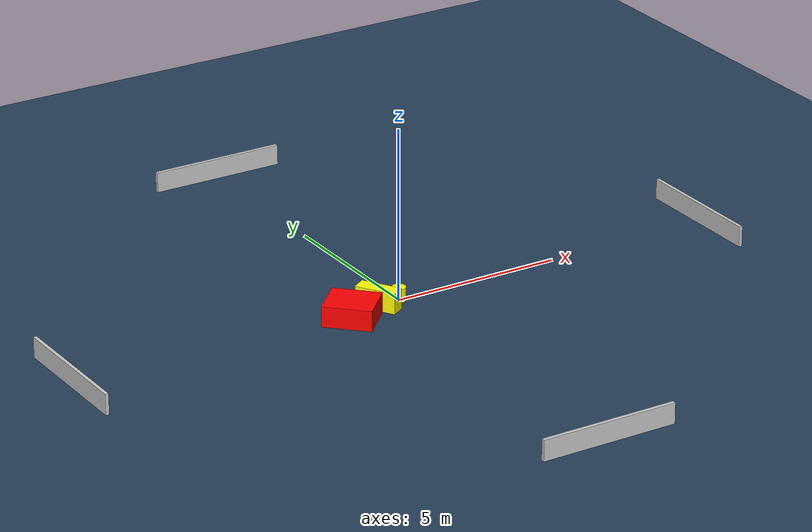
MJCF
<?xml version="1.0" ?>
<mujoco model="generated_environment">
  <option timestep="0.01" integrator="RK4" cone="elliptic"/>
  <default>
    <geom density="1"/>
  </default>
  <asset>
    <texture builtin="gradient" height="3072" name="skybox" rgb1="0.3 0.5 0.7" rgb2="0 0 0" type="skybox" width="512"/>
    <texture builtin="checker" height="300" name="groundplane" rgb1="0.2 0.3 0.4" rgb2="0.1 0.2 0.3" type="2d" width="300"/>
    <material name="groundplane" reflectance="0.2" texrepeat="5 5" texture="groundplane"/>
  </asset>
  <worldbody>
    <light dir="0 0 -1" directional="true" pos="0 0 1.5"/>
    <geom condim="3" friction="0.5 0.005 0.001" material="groundplane" name="floor" pos="0 0 0" size="0 0 0.05" type="plane"/>
    <body name="walls">
      <geom name="wall_1" condim="4" pos="-10.0 0.0 0.3" rgba="0.800000011920929 0.800000011920929 0.800000011920929 1.0" size="0.05 2.0 0.3" type="box"/>
      <geom name="wall_2" condim="4" pos="10.0 0.0 0.3" rgba="0.800000011920929 0.800000011920929 0.800000011920929 1.0" size="0.05 2.0 0.3" type="box"/>
      <geom name="wall_3" condim="4" pos="0.0 -10.0 0.3" rgba="0.800000011920929 0.800000011920929 0.800000011920929 1.0" size="2.0 0.05 0.3" type="box"/>
      <geom name="wall_4" condim="4" pos="0.0 10.0 0.3" rgba="0.800000011920929 0.800000011920929 0.800000011920929 1.0" size="2.0 0.05 0.3" type="box"/>
    </body>
    <body name="robot">
      <joint name="joint_x" type="slide" pos="0 0 0" axis="1 0 0"/>
      <joint name="joint_y" type="slide" pos="0 0 0" axis="0 1 0"/>
      <geom name="robot" type="cylinder" pos="0.0 0.0 0.2" size="0.2 0.2 0.0" mass="5.0" friction="1.0 0.005 0.0001" condim="4" rgba="1.0 1.0 0.0 1.0"/>
    </body>
    <body name="obstacle_1_movable">
      <geom name="obstacle_1_movable" condim="4" pos="-0.7185670765602115 -0.10893262221080442 0.3" euler="0 0 121.90525372396023" friction="0.0 0.005 0.001" rgba="1.0 1.0 0.0 1.0" size="0.5986220836751 0.21932899934813477 0.3" type="box" mass="0.1"/>
      <joint type="free"/>
    </body>
    <body name="obstacle_2_static">
      <geom name="obstacle_2_static" condim="4" pos="-1.7362835445034102 -0.41198090025818623 0.3" euler="0 0 135.3181651334272" friction="0.0 0.005 0.001" rgba="1.0 0.0 0.0 1.0" size="0.6994652993258849 0.6253025185364542 0.3" type="box"/>
    </body>
  </worldbody>
  <actuator>
    <motor name="actuator_x" joint="joint_x" gear="1" ctrlrange="-1 1"/>
    <motor name="actuator_y" joint="joint_y" gear="1" ctrlrange="-1 1"/>
  </actuator>
</mujoco>
